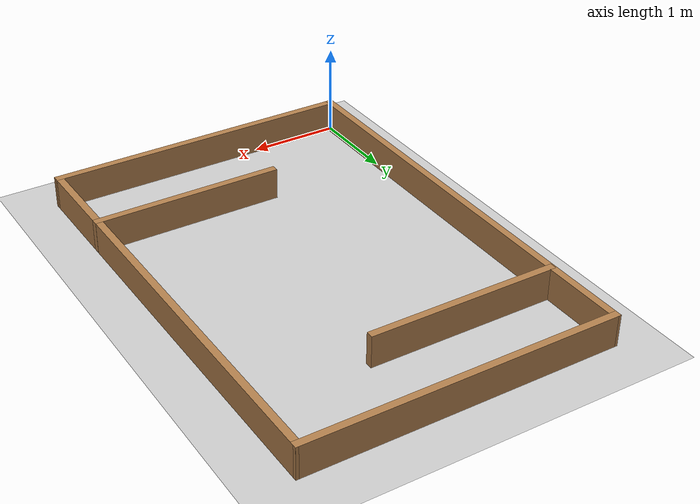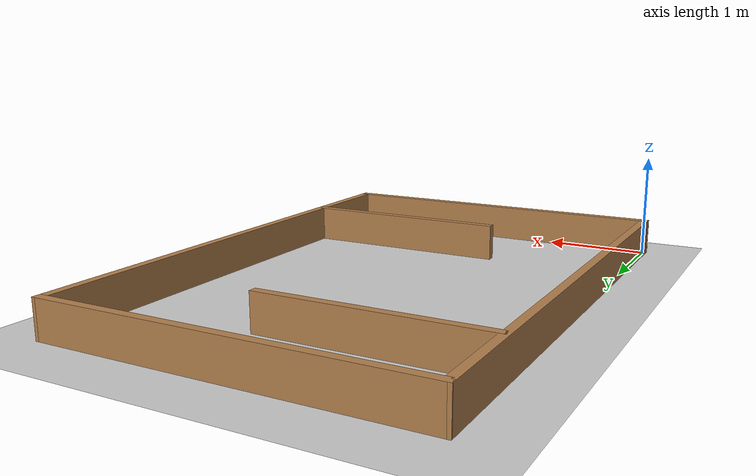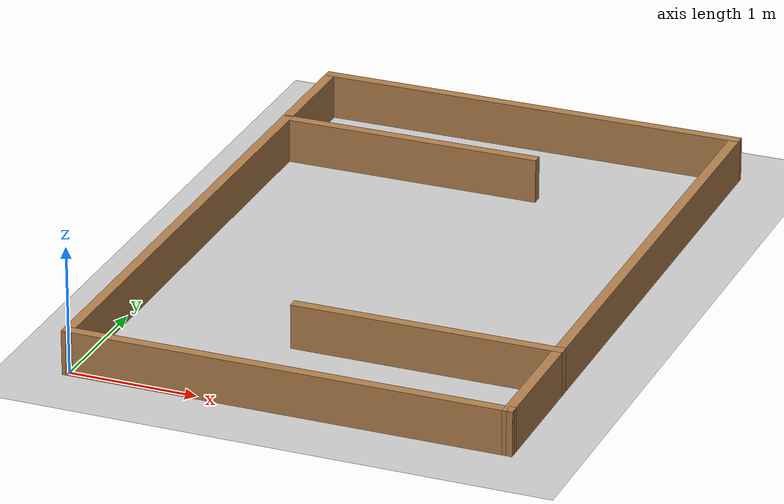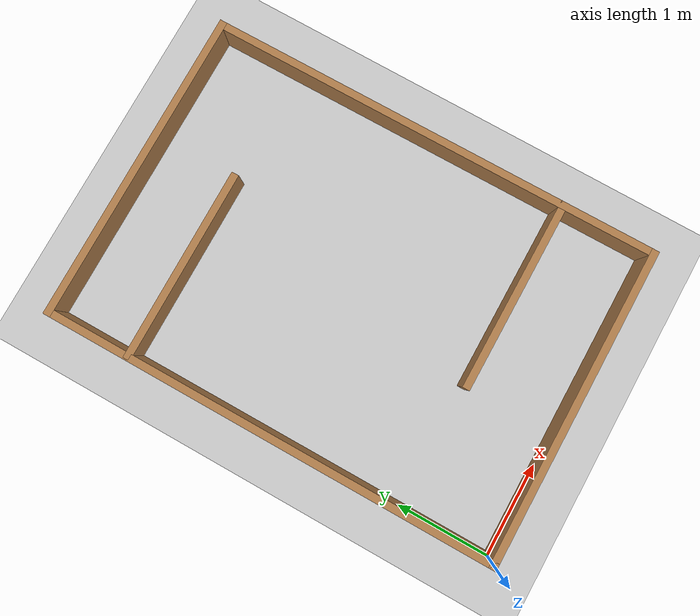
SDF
<sdf version='1.4'>
  <world name='default'>
    <!-- A global light source -->
    <include>
      <uri>model://sun</uri>
    </include>

    <!-- A ground plane -->
    <include>
      <uri>model://ground_plane</uri>
    </include>

    <physics type="ode">
      <real_time_update_rate>1000.0</real_time_update_rate>
      <max_step_size>0.001</max_step_size>
      <real_time_factor>1</real_time_factor>
      <ode>
        <solver>
          <type>quick</type>
          <iters>150</iters>
          <precon_iters>0</precon_iters>
          <sor>1.400000</sor>
          <use_dynamic_moi_rescaling>1</use_dynamic_moi_rescaling>
        </solver>
        <constraints>
          <cfm>0.00001</cfm>
          <erp>0.2</erp>
          <contact_max_correcting_vel>2000.000000</contact_max_correcting_vel>
          <contact_surface_layer>0.01000</contact_surface_layer>
        </constraints>
      </ode>
    </physics>

    <!-- A turtlebot symbol -->
    <include>
      <uri>model://turtlebot3_room</uri>
    </include>

    <scene>
      <ambient>0.4 0.4 0.4 1</ambient>
      <background>0.7 0.7 0.7 1</background>
      <shadows>true</shadows>
    </scene>

    <gui fullscreen='0'>
      <camera name='user_camera'>
        <pose>0.0 0.0 17.0 0 1.5708 0</pose>
        <view_controller>orbit</view_controller>
      </camera>
    </gui>
  </world>
</sdf>

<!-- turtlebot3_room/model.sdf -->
<sdf version='1.6'>
  <model name='turtlebot3_room'>
    <pose frame=''>1.6881 2.45058 0 0 -0 0</pose>
    <link name='Wall_0'>
      <collision name='Wall_0_Collision'>
        <geometry>
          <box>
            <size>4.98 0.08 0.35</size>
          </box>
        </geometry>
        <pose frame=''>0 0 0.175 0 -0 0</pose>
      </collision>
      <visual name='Wall_0_Visual'>
        <pose frame=''>0 0 0.175 0 -0 0</pose>
        <geometry>
          <box>
            <size>4.98 0.08 0.35</size>
          </box>
        </geometry>
        <material>
          <script>
            <uri>file://media/materials/scripts/gazebo.material</uri>
            <name>Gazebo/Wood</name>
          </script>
          <ambient>0.996078 0.47451 0.0196078 1</ambient>
        </material>
      </visual>
      <pose frame=''>-1.6881 -0.000583 0 0 -0 1.5708</pose>
    </link>
    <link name='Wall_24'>
      <collision name='Wall_24_Collision'>
        <geometry>
          <box>
            <size>2.094 0.08 0.35</size>
          </box>
        </geometry>
        <pose frame=''>0 0 0.175 0 -0 0</pose>
      </collision>
      <visual name='Wall_24_Visual'>
        <pose frame=''>0 0 0.175 0 -0 0</pose>
        <geometry>
          <box>
            <size>2.094 0.08 0.35</size>
          </box>
        </geometry>
        <material>
          <script>
            <uri>file://media/materials/scripts/gazebo.material</uri>
            <name>Gazebo/Wood</name>
          </script>
          <ambient>0.996078 0.47451 0.0196078 1</ambient>
        </material>
      </visual>
      <pose frame=''>0.6759 -1.45058 0 0 -0 3.14159</pose>
    </link>
    <link name='Wall_26'>
      <collision name='Wall_26_Collision'>
        <geometry>
          <box>
            <size>2.099 0.08 0.35</size>
          </box>
        </geometry>
        <pose frame=''>0 0 0.175 0 -0 0</pose>
      </collision>
      <visual name='Wall_26_Visual'>
        <pose frame=''>0 0 0.175 0 -0 0</pose>
        <geometry>
          <box>
            <size>2.099 0.08 0.35</size>
          </box>
        </geometry>
        <material>
          <script>
            <uri>file://media/materials/scripts/gazebo.material</uri>
            <name>Gazebo/Wood</name>
          </script>
          <ambient>0.996078 0.47451 0.0196078 1</ambient>
        </material>
      </visual>
      <pose frame=''>-0.6656 1.54942 0 0 -0 0</pose>
    </link>
    <link name='Wall_3'>
      <collision name='Wall_3_Collision'>
        <geometry>
          <box>
            <size>3.456 0.08 0.35</size>
          </box>
        </geometry>
        <pose frame=''>0 0 0.175 0 -0 0</pose>
      </collision>
      <visual name='Wall_3_Visual'>
        <pose frame=''>0 0 0.175 0 -0 0</pose>
        <geometry>
          <box>
            <size>3.456 0.08 0.35</size>
          </box>
        </geometry>
        <material>
          <script>
            <uri>file://media/materials/scripts/gazebo.material</uri>
            <name>Gazebo/Wood</name>
          </script>
          <ambient>0.996078 0.47451 0.0196078 1</ambient>
        </material>
      </visual>
      <pose frame=''>-0.0001 -2.45008 0 0 -0 0.000296</pose>
    </link>
    <link name='Wall_4'>
      <collision name='Wall_4_Collision'>
        <geometry>
          <box>
            <size>4.98 0.08 0.35</size>
          </box>
        </geometry>
        <pose frame=''>0 0 0.175 0 -0 0</pose>
      </collision>
      <visual name='Wall_4_Visual'>
        <pose frame=''>0 0 0.175 0 -0 0</pose>
        <geometry>
          <box>
            <size>4.98 0.08 0.35</size>
          </box>
        </geometry>
        <material>
          <script>
            <uri>file://media/materials/scripts/gazebo.material</uri>
            <name>Gazebo/Wood</name>
          </script>
          <ambient>0.996078 0.47451 0.0196078 1</ambient>
        </material>
      </visual>
      <pose frame=''>1.6749 0.000417 0 0 -0 1.5761</pose>
    </link>
    <link name='Wall_6'>
      <collision name='Wall_6_Collision'>
        <geometry>
          <box>
            <size>3.43 0.08 0.35</size>
          </box>
        </geometry>
        <pose frame=''>0 0 0.175 0 -0 0</pose>
      </collision>
      <visual name='Wall_6_Visual'>
        <pose frame=''>0 0 0.175 0 -0 0</pose>
        <geometry>
          <box>
            <size>3.43 0.08 0.35</size>
          </box>
        </geometry>
        <material>
          <script>
            <uri>file://media/materials/scripts/gazebo.material</uri>
            <name>Gazebo/Wood</name>
          </script>
          <ambient>0.996078 0.47451 0.0196078 1</ambient>
        </material>
      </visual>
      <pose frame=''>-0.0131 2.44992 0 0 -0 0.000299</pose>
    </link>
    <static>1</static>
  </model>
</sdf>
